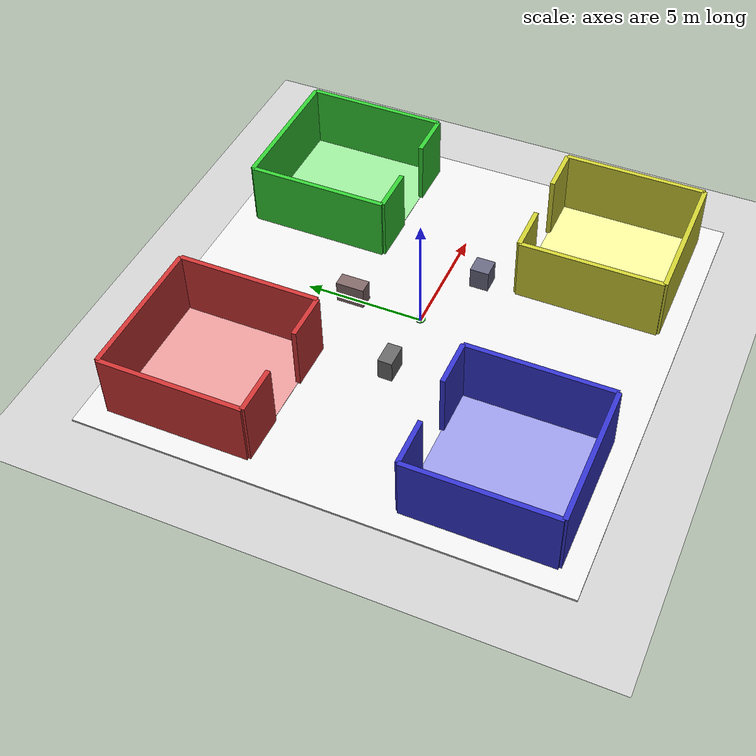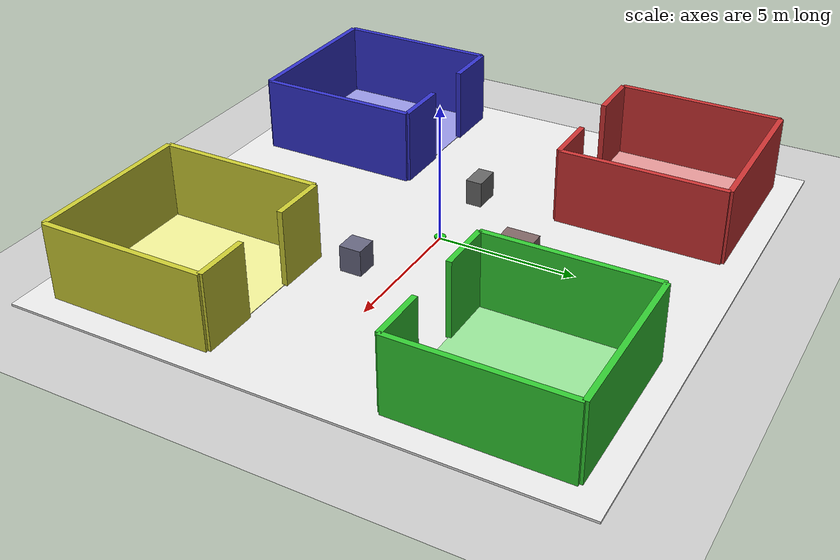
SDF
<?xml version="1.0"?>
<sdf version='1.7'>
  <world name='robotic_chair_worlds'>

    <!-- PHYSICS AND SCENE           -->
    <physics type='ode'>
      <max_step_size>0.001</max_step_size>
      <real_time_factor>1</real_time_factor>
      <real_time_update_rate>1000</real_time_update_rate>
      <ode>
        <solver type='quick'>
          <iters>50</iters>
          <sor>1.3</sor>
        </solver>
        <constraints>
          <contact_max_correcting_vel>100.0</contact_max_correcting_vel>
          <contact_surface_layer>0.001</contact_surface_layer>
        </constraints>
      </ode>
    </physics>

    <scene>
      <ambient>0.6 0.6 0.6 1</ambient>
      <background>0.85 0.85 0.85 1</background>
      <shadows>1</shadows>
    </scene>

    <gravity>0 0 -9.8</gravity>
    <magnetic_field>6e-06 2.3e-05 -4.2e-05</magnetic_field>
    <atmosphere type='adiabatic'/>
    <audio><device>default</device></audio>
    <wind/>
    <spherical_coordinates>
      <surface_model>EARTH_WGS84</surface_model>
      <latitude_deg>0</latitude_deg>
      <longitude_deg>0</longitude_deg>
      <elevation>0</elevation>
      <heading_deg>0</heading_deg>
    </spherical_coordinates>

    <!-- GROUND AND GLOBAL FLOOR     -->
    <model name='ground_plane'>
      <static>1</static>
      <link name='link'>
        <collision name='collision'>
          <geometry>
            <plane>
              <normal>0 0 1</normal>
              <size>100 100</size>
            </plane>
          </geometry>
          <surface>
            <friction>
              <ode>
                <mu>0.7</mu>
                <mu2>0.4</mu2>
              </ode>
            </friction>
          </surface>
        </collision>
        <visual name='visual'>
          <cast_shadows>0</cast_shadows>
          <geometry>
            <plane>
              <normal>0 0 1</normal>
              <size>100 100</size>
            </plane>
          </geometry>
          <material>
            <script>
              <uri>file://media/materials/scripts/gazebo.material</uri>
              <name>Gazebo/Grey</name>
            </script>
          </material>
        </visual>
      </link>
    </model>

    <model name='main_floor'>
      <static>1</static>
      <pose>0 0 0 0 0 0</pose>
      <link name='link'>
        <collision name='collision'>
          <geometry>
            <box>
              <size>20 20 0.1</size>
            </box>
          </geometry>
        </collision>
        <visual name='visual'>
          <geometry>
            <box>
              <size>20 20 0.1</size>
            </box>
          </geometry>
          <material>
            <ambient>0.92 0.92 0.92 1</ambient>
            <diffuse>0.92 0.92 0.92 1</diffuse>
          </material>
        </visual>
      </link>
    </model>

    <!-- ROBOT SPAWN (CENTER)        -->
    <!-- This small cylinder marks an empty spawn area for your robot -->
    <model name='robot_spawn_marker'>
      <static>1</static>
      <pose>0 0 0.05 0 0 0</pose>
      <link name='spawn_link'>
        <collision name='collision'>
          <geometry>
            <cylinder>
              <radius>0.2</radius>
              <length>0.1</length>
            </cylinder>
          </geometry>
        </collision>
        <visual name='visual'>
          <geometry>
            <cylinder>
              <radius>0.2</radius>
              <length>0.1</length>
            </cylinder>
          </geometry>
          <material>
            <ambient>0.1 0.8 0.1 1</ambient>
            <diffuse>0.1 0.8 0.1 1</diffuse>
          </material>
        </visual>
      </link>
    </model>

    <!-- When spawning your own robot, use pose: 0 0 0.1 0 0 0 -->

    <!-- FOUR COLORED ROOMS (6x6m)   -->
    <!-- Layout:                      -->
    <!--   Room1 (RED)   Room2 (GREEN)-->
    <!--   Room3 (BLUE)  Room4 (YELLOW)-->
    <!-- Center (0,0) kept empty      -->

    <!-- Room 1 - RED (top-left) -->
    <model name='room_red'>
      <static>1</static>
      <pose>-6 6 1.4 0 0 0</pose>
      <!-- Room floor patch -->
      <link name='floor'>
        <collision name='collision'>
          <geometry><box><size>6 6 0.05</size></box></geometry>
        </collision>
        <visual name='visual'>
          <geometry><box><size>6 6 0.05</size></box></geometry>
          <material>
            <ambient>0.9 0.6 0.6 1</ambient>
            <diffuse>0.9 0.6 0.6 1</diffuse>
          </material>
        </visual>
        <pose>0 0 -1.35 0 0 0</pose>
      </link>
      <!-- Walls (south wall has door gap facing center) -->
      <link name='north_wall'>
        <collision name='collision'><geometry><box><size>6 0.2 2.8</size></box></geometry></collision>
        <visual name='visual'><geometry><box><size>6 0.2 2.8</size></box></geometry><material><ambient>0.8 0.2 0.2 1</ambient><diffuse>0.8 0.2 0.2 1</diffuse></material></visual>
        <pose>0 3 0 0 0 0</pose>
      </link>
      <link name='south_wall_left'>
        <collision name='collision'><geometry><box><size>2 0.2 2.8</size></box></geometry></collision>
        <visual name='visual'><geometry><box><size>2 0.2 2.8</size></box></geometry><material><ambient>0.8 0.2 0.2 1</ambient><diffuse>0.8 0.2 0.2 1</diffuse></material></visual>
        <pose>-2  -3 0 0 0 0</pose>
      </link>
      <link name='south_wall_right'>
        <collision name='collision'><geometry><box><size>2 0.2 2.8</size></box></geometry></collision>
        <visual name='visual'><geometry><box><size>2 0.2 2.8</size></box></geometry><material><ambient>0.8 0.2 0.2 1</ambient><diffuse>0.8 0.2 0.2 1</diffuse></material></visual>
        <pose>2 -3 0 0 0 0</pose>
      </link>
      <link name='west_wall'>
        <collision name='collision'><geometry><box><size>0.2 6 2.8</size></box></geometry></collision>
        <visual name='visual'><geometry><box><size>0.2 6 2.8</size></box></geometry><material><ambient>0.8 0.2 0.2 1</ambient><diffuse>0.8 0.2 0.2 1</diffuse></material></visual>
        <pose>-3 0 0 0 0 0</pose>
      </link>
      <link name='east_wall'>
        <collision name='collision'><geometry><box><size>0.2 6 2.8</size></box></geometry></collision>
        <visual name='visual'><geometry><box><size>0.2 6 2.8</size></box></geometry><material><ambient>0.8 0.2 0.2 1</ambient><diffuse>0.8 0.2 0.2 1</diffuse></material></visual>
        <pose>3 0 0 0 0 0</pose>
      </link>
    </model>

    <!-- Room 2 - GREEN (top-right) -->
    <model name='room_green'>
      <static>1</static>
      <pose>6 6 1.4 0 0 0</pose>
      <link name='floor'>
        <collision name='collision'><geometry><box><size>6 6 0.05</size></box></geometry></collision>
        <visual name='visual'>
          <geometry><box><size>6 6 0.05</size></box></geometry>
          <material><ambient>0.6 0.9 0.6 1</ambient><diffuse>0.6 0.9 0.6 1</diffuse></material>
        </visual>
        <pose>0 0 -1.35 0 0 0</pose>
      </link>
      <link name='north_wall'>
        <collision name='collision'><geometry><box><size>6 0.2 2.8</size></box></geometry></collision>
        <visual name='visual'><geometry><box><size>6 0.2 2.8</size></box></geometry><material><ambient>0.2 0.8 0.2 1</ambient><diffuse>0.2 0.8 0.2 1</diffuse></material></visual>
        <pose>0 3 0 0 0 0</pose>
      </link>
      <link name='south_wall_left'>
        <collision name='collision'><geometry><box><size>2 0.2 2.8</size></box></geometry></collision>
        <visual name='visual'><geometry><box><size>2 0.2 2.8</size></box></geometry><material><ambient>0.2 0.8 0.2 1</ambient><diffuse>0.2 0.8 0.2 1</diffuse></material></visual>
        <pose>-2 -3 0 0 0 0</pose>
      </link>
      <link name='south_wall_right'>
        <collision name='collision'><geometry><box><size>2 0.2 2.8</size></box></geometry></collision>
        <visual name='visual'><geometry><box><size>2 0.2 2.8</size></box></geometry><material><ambient>0.2 0.8 0.2 1</ambient><diffuse>0.2 0.8 0.2 1</diffuse></material></visual>
        <pose>2 -3 0 0 0 0</pose>
      </link>
      <link name='west_wall'>
        <collision name='collision'><geometry><box><size>0.2 6 2.8</size></box></geometry></collision>
        <visual name='visual'><geometry><box><size>0.2 6 2.8</size></box></geometry><material><ambient>0.2 0.8 0.2 1</ambient><diffuse>0.2 0.8 0.2 1</diffuse></material></visual>
        <pose>-3 0 0 0 0 0</pose>
      </link>
      <link name='east_wall'>
        <collision name='collision'><geometry><box><size>0.2 6 2.8</size></box></geometry></collision>
        <visual name='visual'><geometry><box><size>0.2 6 2.8</size></box></geometry><material><ambient>0.2 0.8 0.2 1</ambient><diffuse>0.2 0.8 0.2 1</diffuse></material></visual>
        <pose>3 0 0 0 0 0</pose>
      </link>
    </model>

    <!-- Room 3 - BLUE (bottom-left) -->
    <model name='room_blue'>
      <static>1</static>
      <pose>-6 -6 1.4 0 0 0</pose>
      <link name='floor'>
        <collision name='collision'><geometry><box><size>6 6 0.05</size></box></geometry></collision>
        <visual name='visual'>
          <geometry><box><size>6 6 0.05</size></box></geometry>
          <material><ambient>0.6 0.6 0.9 1</ambient><diffuse>0.6 0.6 0.9 1</diffuse></material>
        </visual>
        <pose>0 0 -1.35 0 0 0</pose>
      </link>
      <link name='south_wall'>
        <collision name='collision'><geometry><box><size>6 0.2 2.8</size></box></geometry></collision>
        <visual name='visual'><geometry><box><size>6 0.2 2.8</size></box></geometry><material><ambient>0.2 0.2 0.8 1</ambient><diffuse>0.2 0.2 0.8 1</diffuse></material></visual>
        <pose>0 -3 0 0 0 0</pose>
      </link>
      <link name='north_wall_left'>
        <collision name='collision'><geometry><box><size>2 0.2 2.8</size></box></geometry></collision>
        <visual name='visual'><geometry><box><size>2 0.2 2.8</size></box></geometry><material><ambient>0.2 0.2 0.8 1</ambient><diffuse>0.2 0.2 0.8 1</diffuse></material></visual>
        <pose>-2 3 0 0 0 0</pose>
      </link>
      <link name='north_wall_right'>
        <collision name='collision'><geometry><box><size>2 0.2 2.8</size></box></geometry></collision>
        <visual name='visual'><geometry><box><size>2 0.2 2.8</size></box></geometry><material><ambient>0.2 0.2 0.8 1</ambient><diffuse>0.2 0.2 0.8 1</diffuse></material></visual>
        <pose>2 3 0 0 0 0</pose>
      </link>
      <link name='west_wall'>
        <collision name='collision'><geometry><box><size>0.2 6 2.8</size></box></geometry></collision>
        <visual name='visual'><geometry><box><size>0.2 6 2.8</size></box></geometry><material><ambient>0.2 0.2 0.8 1</ambient><diffuse>0.2 0.2 0.8 1</diffuse></material></visual>
        <pose>-3 0 0 0 0 0</pose>
      </link>
      <link name='east_wall'>
        <collision name='collision'><geometry><box><size>0.2 6 2.8</size></box></geometry></collision>
        <visual name='visual'><geometry><box><size>0.2 6 2.8</size></box></geometry><material><ambient>0.2 0.2 0.8 1</ambient><diffuse>0.2 0.2 0.8 1</diffuse></material></visual>
        <pose>3 0 0 0 0 0</pose>
      </link>
    </model>

    <!-- Room 4 - YELLOW (bottom-right) -->
    <model name='room_yellow'>
      <static>1</static>
      <pose>6 -6 1.4 0 0 0</pose>
      <link name='floor'>
        <collision name='collision'><geometry><box><size>6 6 0.05</size></box></geometry></collision>
        <visual name='visual'>
          <geometry><box><size>6 6 0.05</size></box></geometry>
          <material><ambient>0.95 0.95 0.6 1</ambient><diffuse>0.95 0.95 0.6 1</diffuse></material>
        </visual>
        <pose>0 0 -1.35 0 0 0</pose>
      </link>
      <link name='south_wall'>
        <collision name='collision'><geometry><box><size>6 0.2 2.8</size></box></geometry></collision>
        <visual name='visual'><geometry><box><size>6 0.2 2.8</size></box></geometry><material><ambient>0.8 0.8 0.2 1</ambient><diffuse>0.8 0.8 0.2 1</diffuse></material></visual>
        <pose>0 -3 0 0 0 0</pose>
      </link>
      <link name='north_wall_left'>
        <collision name='collision'><geometry><box><size>2 0.2 2.8</size></box></geometry></collision>
        <visual name='visual'><geometry><box><size>2 0.2 2.8</size></box></geometry><material><ambient>0.8 0.8 0.2 1</ambient><diffuse>0.8 0.8 0.2 1</diffuse></material></visual>
        <pose>-2 3 0 0 0 0</pose>
      </link>
      <link name='north_wall_right'>
        <collision name='collision'><geometry><box><size>2 0.2 2.8</size></box></geometry></collision>
        <visual name='visual'><geometry><box><size>2 0.2 2.8</size></box></geometry><material><ambient>0.8 0.8 0.2 1</ambient><diffuse>0.8 0.8 0.2 1</diffuse></material></visual>
        <pose>2 3 0 0 0 0</pose>
      </link>
      <link name='west_wall'>
        <collision name='collision'><geometry><box><size>0.2 6 2.8</size></box></geometry></collision>
        <visual name='visual'><geometry><box><size>0.2 6 2.8</size></box></geometry><material><ambient>0.8 0.8 0.2 1</ambient><diffuse>0.8 0.8 0.2 1</diffuse></material></visual>
        <pose>-3 0 0 0 0 0</pose>
      </link>
      <link name='east_wall'>
        <collision name='collision'><geometry><box><size>0.2 6 2.8</size></box></geometry></collision>
        <visual name='visual'><geometry><box><size>0.2 6 2.8</size></box></geometry><material><ambient>0.8 0.8 0.2 1</ambient><diffuse>0.8 0.8 0.2 1</diffuse></material></visual>
        <pose>3 0 0 0 0 0</pose>
      </link>
    </model>

    <!-- OBSTACLES AROUND CENTER     -->
    <!-- Obstacles are kept away from exact center (0,0) but
         close enough for navigation and path planning. -->
    <model name='obstacles'>
      <static>1</static>
      <link name='box1'>
        <collision name='collision'><geometry><box><size>1.0 0.6 1.0</size></box></geometry></collision>
        <visual name='visual'><geometry><box><size>1.0 0.6 1.0</size></box></geometry><material><ambient>0.4 0.4 0.4 1</ambient><diffuse>0.4 0.4 0.4 1</diffuse></material></visual>
        <pose>-3 0 0.5 0 0 0</pose>
      </link>
      <link name='box2'>
        <collision name='collision'><geometry><box><size>0.8 0.8 1.0</size></box></geometry></collision>
        <visual name='visual'><geometry><box><size>0.8 0.8 1.0</size></box></geometry><material><ambient>0.4 0.4 0.5 1</ambient><diffuse>0.4 0.4 0.5 1</diffuse></material></visual>
        <pose>3 -1.5 0.5 0 0 0</pose>
      </link>
      <link name='box3'>
        <collision name='collision'><geometry><box><size>0.6 1.2 1.0</size></box></geometry></collision>
        <visual name='visual'><geometry><box><size>0.6 1.2 1.0</size></box></geometry><material><ambient>0.5 0.4 0.4 1</ambient><diffuse>0.5 0.4 0.4 1</diffuse></material></visual>
        <pose>0 3 0.5 0 0 0</pose>
      </link>
    </model>

    <!-- LIGHTING AND CAMERA         -->
    <light name='overhead_light' type='directional'>
      <cast_shadows>1</cast_shadows>
      <pose>0 0 10 0 0 0</pose>
      <diffuse>1 1 1 1</diffuse>
      <specular>0.2 0.2 0.2 1</specular>
      <direction>-0.3 0.3 -1</direction>
    </light>

    <gui fullscreen='0'>
      <camera name='user_camera'>
        <pose>0 18 22 0 1.0 0</pose>
        <view_controller>orbit</view_controller>
        <projection_type>perspective</projection_type>
      </camera>
    </gui>

  </world>
</sdf>
